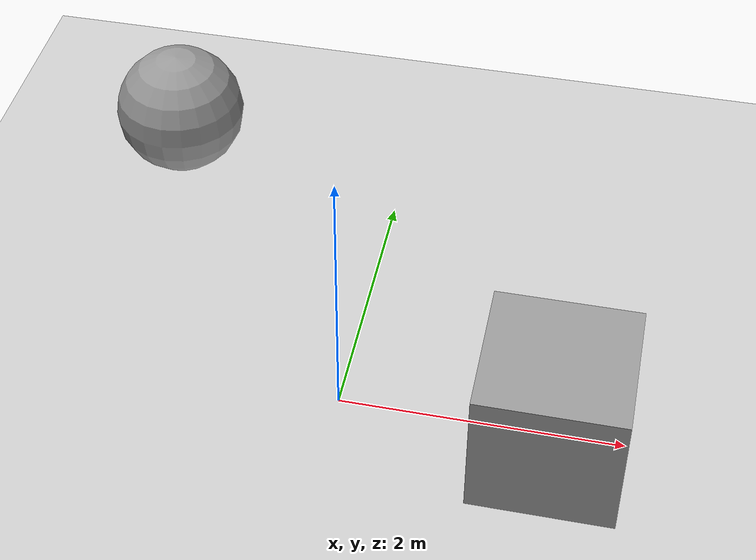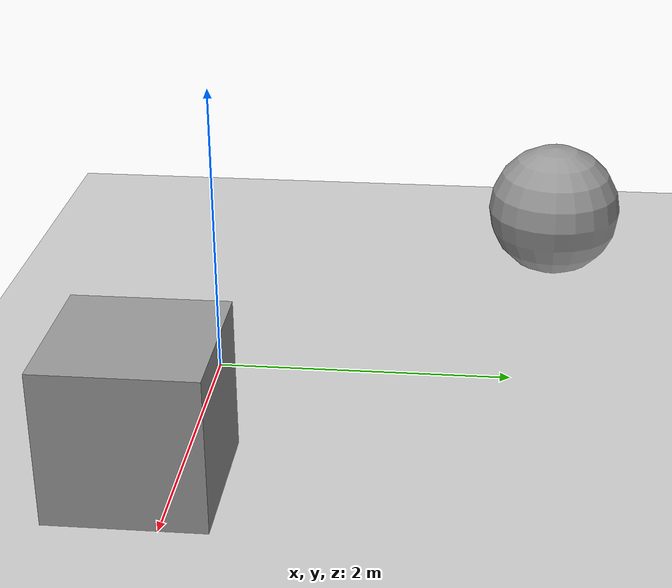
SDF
<sdf version="1.7">
  <world name="default">
    <light name="sun" type="directional">
      <cast_shadows>1</cast_shadows>
      <pose>0 0 10 0 0 0</pose>
      <diffuse>0.8 0.8 0.8 1</diffuse>
      <specular>0.2 0.2 0.2 1</specular>
      <direction>-0.5 0.1 -0.9</direction>
    </light>

    <model name="ground_plane">
      <static>1</static>
      <link name="link">
        <collision name="collision">
          <geometry><plane><normal>0 0 1</normal><size>100 100</size></plane></geometry>
        </collision>
        <visual name="visual">
          <geometry><plane><normal>0 0 1</normal><size>100 100</size></plane></geometry>
          <material><script><uri>file://media/materials/scripts/gazebo.material</uri><name>Gazebo/Grey</name></script></material>
        </visual>
      </link>
    </model>

    <!-- Obstáculo Caja -->
    <model name="unit_box">
      <pose>1.5 -0.2 0.5 0 0 0</pose>
      <link name="link">
        <collision name="collision">
          <geometry><box><size>1 1 1</size></box></geometry>
        </collision>
        <visual name="visual">
          <geometry><box><size>1 1 1</size></box></geometry>
          <material><script><name>Gazebo/Grey</name><uri>file://media/materials/scripts/gazebo.material</uri></script></material>
        </visual>
      </link>
    </model>

    <!-- Obstáculo Esfera -->
    <model name="unit_sphere">
      <pose>-1.8 2.3 0.5 0 0 0</pose>
      <link name="link">
        <collision name="collision">
          <geometry><sphere><radius>0.5</radius></sphere></geometry>
        </collision>
        <visual name="visual">
          <geometry><sphere><radius>0.5</radius></sphere></geometry>
          <material><script><name>Gazebo/Grey</name><uri>file://media/materials/scripts/gazebo.material</uri></script></material>
        </visual>
      </link>
    </model>
  </world>
</sdf>
